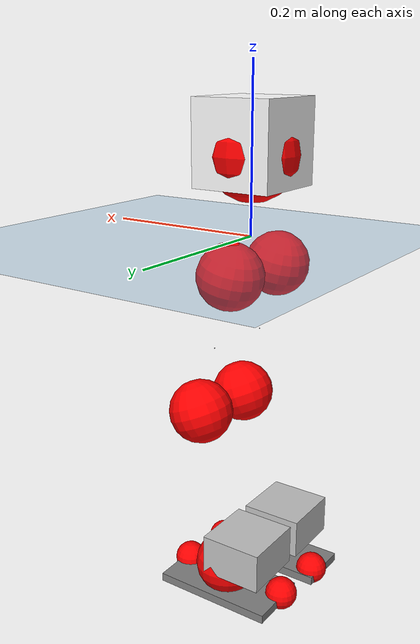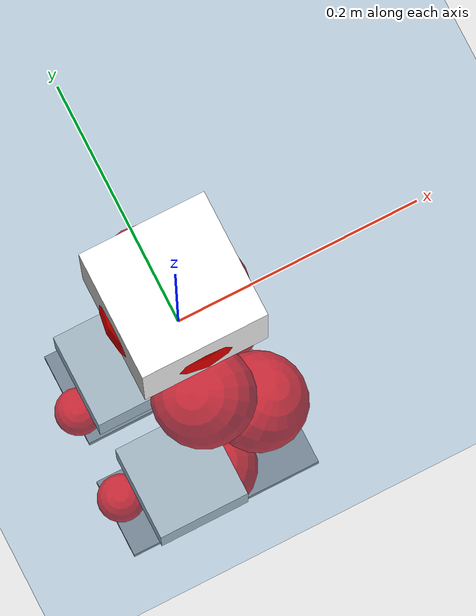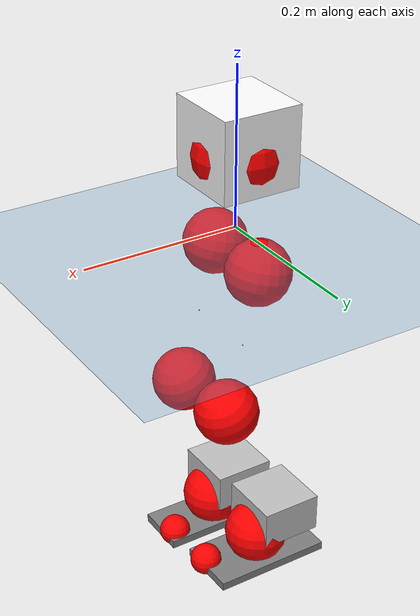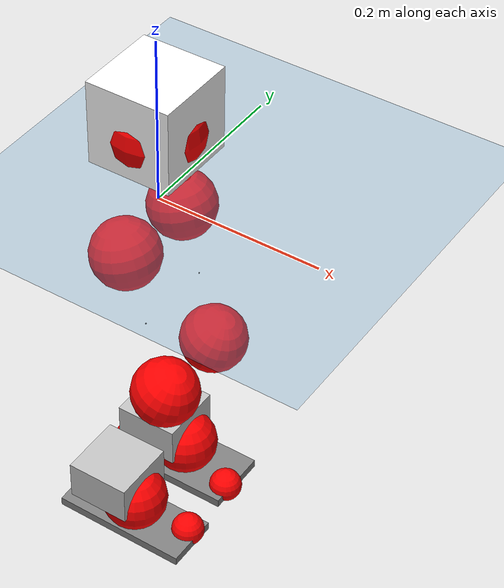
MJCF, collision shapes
<mujoco model="pi_12dof_release_v1">
  <compiler angle="radian" assetdir="assets" balanceinertia="true" inertiafromgeom="false"/>

  <option timestep="0.005" density="1.2" viscosity="2e-05"/>

  <size nkey="1"/>

  <visual>
    <quality shadowsize="8192"/>
    <map shadowclip="0.5"/>
  </visual>

  <default>
    <default class="/">
      <joint armature="0.01" damping="0.01" frictionloss="0.01"/>
      <geom contype="0" conaffinity="0" group="1" solref="-1000 -80"/>
      <site size="0.01 0.005 0.005" group="5"/>
      <general forcelimited="true" biastype="affine" gainprm="20" biasprm="0 -20 -0.5"/>
      <default class="foot">
        <geom size="0.0845 0.036 0.005" type="box" condim="6" group="4" priority="1" friction="0.9 0.2 0.2" solimp="0.015 1 0.005"/>
      </default>
      <default class="reward_collision_sphere">
        <geom group="5" rgba="1 0 0 1"/>
      </default>
    </default>
  </default>

  <asset>
    <texture type="skybox" colorspace="auto" name="//unnamed_texture_0" builtin="gradient" rgb1="0.95 0.95 0.95" rgb2="0.95 0.95 0.95" width="100" height="600"/>
    <texture type="2d" colorspace="auto" name="texplane" builtin="checker" rgb1="0.345 0.575 0.748" rgb2="0.345 0.575 0.748" markrgb="1 1 1" width="512" height="512"/>
    <material name="MatPlane" class="/" texture="texplane" texuniform="true" texrepeat="2 2" specular="0.9"/>
    <mesh name="baselink_1" class="/" file="baselink_1.STL"/>
    <mesh name="r_hip_pitch_link" class="/" file="r_hip_pitch_link.STL"/>
    <mesh name="r_hip_roll_link" class="/" file="r_hip_roll_link.STL"/>
    <mesh name="r_thigh_link" class="/" file="r_thigh_link.STL"/>
    <mesh name="r_calf_link" class="/" file="r_calf_link.STL"/>
    <mesh name="r_ankle_pitch_link" class="/" file="r_ankle_pitch_link.STL"/>
    <mesh name="r_ankle_roll_link" class="/" file="r_ankle_roll_link.STL"/>
    <mesh name="l_hip_pitch_link" class="/" file="l_hip_pitch_link.STL"/>
    <mesh name="l_hip_roll_link" class="/" file="l_hip_roll_link.STL"/>
    <mesh name="l_thigh_link" class="/" file="l_thigh_link.STL"/>
    <mesh name="l_calf_link" class="/" file="l_calf_link.STL"/>
    <mesh name="l_ankle_pitch_link" class="/" file="l_ankle_pitch_link.STL"/>
    <mesh name="l_ankle_roll_link" class="/" file="l_ankle_roll_link.STL"/>
  </asset>

  <worldbody>
    <geom name="floor" class="/" size="100 100 0.125" type="plane" group="0" material="MatPlane"/>
    <light name="toplight_shadow" class="/" pos="0 0 5" dir="0.0990148 0.0990148 -0.990148" type="directional" ambient="0.04 0.04 0.04" diffuse="0.55 0.55 0.55" specular="0.12 0.12 0.12"/>
    <light name="toplight_fill" class="/" pos="0 0 5" dir="0.0990148 0.0990148 -0.990148" type="directional" castshadow="false" ambient="0.04 0.04 0.04" diffuse="0.3 0.3 0.3" specular="0.08 0.08 0.08"/>
    <body name="trunk" pos="-0.00156966 0.000455543 0.00232991" quat="0.999999 -0.000983571 -0.000942204 7.64956e-05">
      <inertial pos="0.00319342 -0.0013248 0.0512969" quat="0.697999 0.013838 0.00840203 0.715915" mass="2.22401" diaginertia="0.0127908 0.00100868 0.0175451"/>
      <joint name="//unnamed_joint_0" type="free"/>
      <geom name="//unnamed_geom_1" class="/" type="mesh" density="0" rgba="1 1 1 1" mesh="baselink_1"/>
      <geom name="//unnamed_geom_2" class="/" size="0.0506066 0.0506066 0.0506066" pos="0 0 0.106728" type="box" rgba="1 1 1 1"/>
      <geom name="//unnamed_geom_3" class="reward_collision_sphere" size="0.0556673" pos="0 0 0.0933867"/>
      <site name="imu" class="/" pos="0.00345613 0.000760611 -0.00362628" size="0.0101213"/>
      <camera name="track" class="/" pos="0 -1.29199 0" quat="0.707107 0.707107 0 0" mode="trackcom"/>
      <camera name="ego_camera" class="/" pos="0.0792227 0 0.240137" quat="-0.5 -0.5 0.5 0.5"/>
      <body name="r_hip_pitch_link" pos="-0.00156439 -0.0167957 -0.0465581" quat="0.992195 0.000143525 -0.124694 2.69501e-05">
        <inertial pos="0.00120949 -0.0385266 -4.04552e-05" quat="-0.0193698 0.705853 -0.0283277 0.707527" mass="0.400337" diaginertia="0.000143312 1.08631e-05 0.000355071"/>
        <joint name="r_hip_pitch_joint" class="/" pos="0 0 0" axis="-0.00225517 -0.999974 0.00680369" stiffness="0.00694086" range="-1.76468 1.24438" armature="0.00942163" damping="0.0138553" frictionloss="0.00877638"/>
        <geom name="//unnamed_geom_4" class="/" type="mesh" density="0" rgba="0.75294 0.75294 0.75294 1" mesh="r_hip_pitch_link"/>
        <geom name="//unnamed_geom_5" class="/" size="0.000506066 0.000506066 0.000506066" type="box" rgba="0.75294 0.75294 0.75294 1"/>
        <body name="r_hip_roll_link" pos="-0.00254232 -0.0362604 0.00248242" quat="1 -8.97382e-05 -0.000297691 0.00045779">
          <inertial pos="-0.00254472 -0.000127881 -0.0790741" quat="0.707222 -0.0859147 -0.0749406 0.697739" mass="0.394262" diaginertia="0.000444147 3.16578e-05 0.000561717"/>
          <joint name="r_hip_roll_joint" class="/" pos="0 0 0" axis="-0.999928 -0.0086747 0.00825109" stiffness="0.000501071" range="-0.126031 0.492229" armature="0.00877527" damping="0.0102147" frictionloss="0.0103298"/>
          <geom name="//unnamed_geom_6" class="/" type="mesh" density="0" rgba="0.75294 0.75294 0.75294 1" mesh="r_hip_roll_link"/>
          <geom name="//unnamed_geom_7" class="/" size="0.000506066 0.000506066 0.000506066" type="box" rgba="0.75294 0.75294 0.75294 1"/>
          <geom name="//unnamed_geom_8" class="reward_collision_sphere" size="0.0404853"/>
          <body name="r_thigh_link" pos="0.000534857 0.00120416 -0.0933671" quat="1 0.000295582 0.000396702 0.000461465">
            <inertial pos="-0.000841952 0.00226845 -0.0662934" quat="0.736407 0.676534 0.00223537 -0.000700288" mass="0.11651" diaginertia="0.000159809 1.04951e-05 0.000246159"/>
            <joint name="r_thigh_joint" class="/" pos="0 0 0" axis="-0.00148584 -0.000329008 -0.999999" stiffness="0.00916831" range="-0.349372 0.570298" armature="0.0104324" damping="0" frictionloss="0.0115412"/>
            <geom name="//unnamed_geom_9" class="/" type="mesh" density="0" rgba="0.75294 0.75294 0.75294 1" mesh="r_thigh_link"/>
            <geom name="//unnamed_geom_10" class="/" size="0.000506066 0.000506066 0.000506066" type="box" rgba="0.75294 0.75294 0.75294 1"/>
            <body name="r_calf_link" pos="1.67982e-05 0.00151836 -0.0956782" quat="0.947648 -1.62565e-05 0.319317 -2.05689e-07">
              <inertial pos="-0.00310868 1.44359e-05 -0.0957667" quat="0.999985 -0.00300682 0.000395467 0.00453385" mass="0.856785" diaginertia="0.0045375 0.000399397 0.000720503"/>
              <joint name="r_calf_joint" class="/" pos="0 0 0" axis="0.0110008 -0.999936 0.0028131" stiffness="0.000111245" range="-1.64538 0.700463" armature="0.00857904" damping="0" frictionloss="0.00968711"/>
              <geom name="//unnamed_geom_11" class="/" type="mesh" density="0" rgba="0.75294 0.75294 0.75294 1" mesh="r_calf_link"/>
              <geom name="//unnamed_geom_12" class="/" size="0.000506066 0.000506066 0.000506066" type="box" rgba="0.75294 0.75294 0.75294 1"/>
              <geom name="//unnamed_geom_13" class="reward_collision_sphere" size="0.0404853"/>
              <body name="r_ankle_pitch_link" pos="0.00275302 -0.00200589 -0.188166" quat="0.980186 0.000335604 -0.19808 0.000452676">
                <inertial pos="0.00578784 0.000812508 -0.00300865" quat="-0.00182453 0.697685 -0.00241601 0.716399" mass="0.185374" diaginertia="0.000387571 2.42068e-05 0.000505925"/>
                <joint name="r_ankle_pitch_joint" class="/" pos="0 0 0" axis="-0.0044671 -0.999925 -0.0114068" range="-1.27207 0.552862" armature="0.0114852" damping="0.000719989" frictionloss="0.010448"/>
                <geom name="//unnamed_geom_14" class="/" type="mesh" density="0" rgba="0.75294 0.75294 0.75294 1" mesh="r_ankle_pitch_link"/>
                <geom name="//unnamed_geom_15" class="/" size="0.0394731 0.0404853 0.0253033" type="box" rgba="0.75294 0.75294 0.75294 1"/>
                <body name="r_ankle_roll_link" pos="0.0772201 0.000434633 1.3229e-05" quat="0.999999 -0.000469189 0.000728049 -0.00102263">
                  <inertial pos="-0.0273318 -0.000225381 -0.0194647" quat="0.560135 0.43057 0.43409 0.558949" mass="0.570606" diaginertia="0.00157624 0.00011489 0.00123388"/>
                  <joint name="r_ankle_roll_joint" class="/" pos="0 0 0" axis="-0.999888 0.0148543 0.00155901" range="-0.0996174 0.133725" armature="0.010321" damping="0.0100576" frictionloss="0.0109483"/>
                  <geom name="//unnamed_geom_16" class="/" type="mesh" density="0" rgba="0.75294 0.75294 0.75294 1" mesh="r_ankle_roll_link"/>
                  <geom name="//unnamed_geom_17" class="/" type="mesh" rgba="0.75294 0.75294 0.75294 1" mesh="r_ankle_roll_link"/>
                  <geom name="right_foot" class="foot" size="0.0849582 0.0341383 0.00551654" pos="-0.0538715 0 -0.0587002"/>
                  <geom name="//unnamed_geom_19" class="reward_collision_sphere" size="0.0404853" pos="-0.0528152 0 -0.0266819"/>
                  <geom name="//unnamed_geom_20" class="reward_collision_sphere" size="0.0202426" pos="0.0158445 0.0129199 -0.0533638"/>
                  <geom name="//unnamed_geom_21" class="reward_collision_sphere" size="0.0202426" pos="-0.126756 0.0129199 -0.0533638"/>
                  <site name="right_foot" class="foot" pos="-0.0538715 0 -0.0587002" size="0.0101213"/>
                </body>
              </body>
            </body>
          </body>
        </body>
      </body>
      <body name="l_hip_pitch_link" pos="0.0005001 0.0127286 -0.0446482" quat="0.992199 -4.53172e-05 -0.124667 1.40923e-05">
        <inertial pos="0.00037131 0.0372092 -0.000454962" quat="-0.0310313 0.701612 0.028065 0.71133" mass="0.406895" diaginertia="0.000167883 1.1723e-05 0.00041294"/>
        <joint name="l_hip_pitch_joint" class="/" pos="0 0 0" axis="0.00265398 0.999983 -0.0052361" range="-1.23438 1.74765" armature="0.00960323" damping="0.0253483" frictionloss="0.00881655"/>
        <geom name="//unnamed_geom_22" class="/" type="mesh" density="0" rgba="0.75294 0.75294 0.75294 1" mesh="l_hip_pitch_link"/>
        <geom name="//unnamed_geom_23" class="/" size="0.000506066 0.000506066 0.000506066" type="box" rgba="0.75294 0.75294 0.75294 1"/>
        <body name="l_hip_roll_link" pos="-0.000172204 0.0335436 0.00313789" quat="0.999999 0.000103636 0.000425036 0.00120015">
          <inertial pos="-0.00155541 0.00225998 -0.081328" quat="0.699193 -0.0755412 -0.0776518 0.706678" mass="0.377769" diaginertia="0.000426113 3.1204e-05 0.000542624"/>
          <joint name="l_hip_roll_joint" class="/" pos="0 0 0" axis="-0.999921 0.00982098 0.00781057" range="-0.455144 0.0911966" armature="0.00925896" damping="0.0169993" frictionloss="0.00870617"/>
          <geom name="//unnamed_geom_24" class="/" type="mesh" density="0" rgba="0.75294 0.75294 0.75294 1" mesh="l_hip_roll_link"/>
          <geom name="//unnamed_geom_25" class="/" size="0.000506066 0.000506066 0.000506066" type="box" rgba="0.75294 0.75294 0.75294 1"/>
          <geom name="//unnamed_geom_26" class="reward_collision_sphere" size="0.0404853"/>
          <body name="l_thigh_link" pos="-0.00220076 0.00205241 -0.0939671" quat="1 0.000275557 -7.66671e-05 -0.000405059">
            <inertial pos="0.0029987 0.000272965 -0.0658817" quat="0.668695 0.743469 -0.00987887 0.00176537" mass="0.115812" diaginertia="0.000157593 1.07354e-05 0.000248613"/>
            <joint name="l_thigh_joint" class="/" pos="0 0 0" axis="0.00050947 -0.00322909 -0.999995" range="-0.609773 0.24281" armature="0.0111675" damping="0.00678089" frictionloss="0.00995148"/>
            <geom name="//unnamed_geom_27" class="/" type="mesh" density="0" rgba="0.75294 0.75294 0.75294 1" mesh="l_thigh_link"/>
            <geom name="//unnamed_geom_28" class="/" size="0.000506066 0.000506066 0.000506066" type="box" rgba="0.75294 0.75294 0.75294 1"/>
            <body name="l_calf_link" pos="-0.00120673 -0.000688787 -0.0908593" quat="0.947731 -0.000197726 0.31907 0.000139431">
              <inertial pos="-0.0025203 0.00442927 -0.0932473" quat="0.99996 0.00705825 -0.00227902 0.00492748" mass="0.866245" diaginertia="0.00467477 0.000394095 0.000740268"/>
              <joint name="l_calf_joint" class="/" pos="0 0 0" axis="-0.0038104 0.999954 -0.00878826" stiffness="0.00658338" range="-0.653387 1.70107" armature="0.010217" damping="0" frictionloss="0.0113616"/>
              <geom name="//unnamed_geom_29" class="/" type="mesh" density="0" rgba="0.75294 0.75294 0.75294 1" mesh="l_calf_link"/>
              <geom name="//unnamed_geom_30" class="/" size="0.000506066 0.000506066 0.000506066" type="box" rgba="0.75294 0.75294 0.75294 1"/>
              <geom name="//unnamed_geom_31" class="reward_collision_sphere" size="0.0404853"/>
              <body name="l_ankle_pitch_link" pos="-0.000350505 0.00360266 -0.187803" quat="0.980081 0.000488309 -0.198594 0.00064004">
                <inertial pos="0.00435533 0.00213886 0.00081713" quat="-0.00329365 0.706831 0.00394458 0.707364" mass="0.171384" diaginertia="0.000380339 2.43557e-05 0.00049037"/>
                <joint name="l_ankle_pitch_joint" class="/" pos="0 0 0" axis="-0.00293047 0.999991 0.00307942" stiffness="0.00155224" range="-0.564325 1.25051" armature="0.00890128" damping="0.00960124" frictionloss="0.0114618"/>
                <geom name="//unnamed_geom_32" class="/" type="mesh" density="0" rgba="0.75294 0.75294 0.75294 1" mesh="l_ankle_pitch_link"/>
                <geom name="//unnamed_geom_33" class="/" size="0.0394731 0.0404853 0.0253033" type="box" rgba="0.75294 0.75294 0.75294 1"/>
                <body name="l_ankle_roll_link" pos="0.0816462 0.00191656 -0.000456725" quat="1 -0.000127336 -0.000186745 -7.74223e-05">
                  <inertial pos="-0.0237628 -0.00340495 -0.0180687" quat="0.56832 0.430216 0.430638 0.553604" mass="0.53396" diaginertia="0.00144877 0.000115897 0.00116147"/>
                  <joint name="l_ankle_roll_joint" class="/" pos="0 0 0" axis="-0.999994 -0.00273936 -0.00212823" range="-0.122396 0.102809" armature="0.011201" damping="0.0111262" frictionloss="0.0115073"/>
                  <geom name="//unnamed_geom_34" class="/" type="mesh" density="0" rgba="0.75294 0.75294 0.75294 1" mesh="l_ankle_roll_link"/>
                  <geom name="//unnamed_geom_35" class="/" type="mesh" rgba="0.75294 0.75294 0.75294 1" mesh="l_ankle_roll_link"/>
                  <geom name="left_foot" class="foot" size="0.0774574 0.0405422 0.00545484" pos="-0.0538715 0 -0.0587002"/>
                  <geom name="//unnamed_geom_37" class="reward_collision_sphere" size="0.0404853" pos="-0.0528152 0 -0.0266819"/>
                  <geom name="//unnamed_geom_38" class="reward_collision_sphere" size="0.0202426" pos="0.0158445 -0.0129199 -0.0533638"/>
                  <geom name="//unnamed_geom_39" class="reward_collision_sphere" size="0.0202426" pos="-0.126756 -0.0129199 -0.0533638"/>
                  <site name="left_foot" class="foot" pos="-0.0538715 0 -0.0587002" size="0.0101213"/>
                </body>
              </body>
            </body>
          </body>
        </body>
      </body>
    </body>
  </worldbody>

  <contact>
    <pair class="/" geom1="floor" geom2="right_foot" name="//unnamed_contact_1"/>
    <pair class="/" geom1="floor" geom2="left_foot" name="//unnamed_contact_0"/>
  </contact>

  <actuator>
    <general name="r_hip_pitch_joint" class="/" joint="r_hip_pitch_joint" forcerange="-22.8234 22.8234" gainprm="20.6997" biasprm="0 -20.6997 -0.477646"/>
    <general name="r_hip_roll_joint" class="/" joint="r_hip_roll_joint" forcerange="-21.6263 21.6263" gainprm="20.6997" biasprm="0 -20.6997 -0.477646"/>
    <general name="r_thigh_joint" class="/" joint="r_thigh_joint" forcerange="-20.5712 20.5712" gainprm="20.6997" biasprm="0 -20.6997 -0.477646"/>
    <general name="r_calf_joint" class="/" joint="r_calf_joint" forcerange="-21.9253 21.9253" gainprm="20.6997" biasprm="0 -20.6997 -0.477646"/>
    <general name="r_ankle_pitch_joint" class="/" joint="r_ankle_pitch_joint" forcerange="-21.5322 21.5322" gainprm="20.6997" biasprm="0 -20.6997 -0.477646"/>
    <general name="r_ankle_roll_joint" class="/" joint="r_ankle_roll_joint" forcerange="-21.6075 21.6075" gainprm="20.6997" biasprm="0 -20.6997 -0.477646"/>
    <general name="l_hip_pitch_joint" class="/" joint="l_hip_pitch_joint" forcerange="-19.6061 19.6061" gainprm="20.6997" biasprm="0 -20.6997 -0.477646"/>
    <general name="l_hip_roll_joint" class="/" joint="l_hip_roll_joint" forcerange="-21.0038 21.0038" gainprm="20.6997" biasprm="0 -20.6997 -0.477646"/>
    <general name="l_thigh_joint" class="/" joint="l_thigh_joint" forcerange="-19.4388 19.4388" gainprm="20.6997" biasprm="0 -20.6997 -0.477646"/>
    <general name="l_calf_joint" class="/" joint="l_calf_joint" forcerange="-20.6678 20.6678" gainprm="20.6997" biasprm="0 -20.6997 -0.477646"/>
    <general name="l_ankle_pitch_joint" class="/" joint="l_ankle_pitch_joint" forcerange="-23.1789 23.1789" gainprm="20.6997" biasprm="0 -20.6997 -0.477646"/>
    <general name="l_ankle_roll_joint" class="/" joint="l_ankle_roll_joint" forcerange="-20.4993 20.4993" gainprm="20.6997" biasprm="0 -20.6997 -0.477646"/>
  </actuator>

  <sensor>
    <gyro site="imu" name="imu_angular_velocity"/>
    <velocimeter site="imu" name="imu_linear_velocity"/>
    <framelinvel objtype="site" objname="left_foot" name="left_foot_global_linear_velocity"/>
    <framelinvel objtype="site" objname="right_foot" name="right_foot_global_linear_velocity"/>
  </sensor>

  <keyframe>
    <key name="home" qpos="0 0 0.291 1 0 0 0 0.4 0 0 -0.8 0.4 0 -0.4 0 0 0.8 -0.4 0"/>
  </keyframe>
</mujoco>
